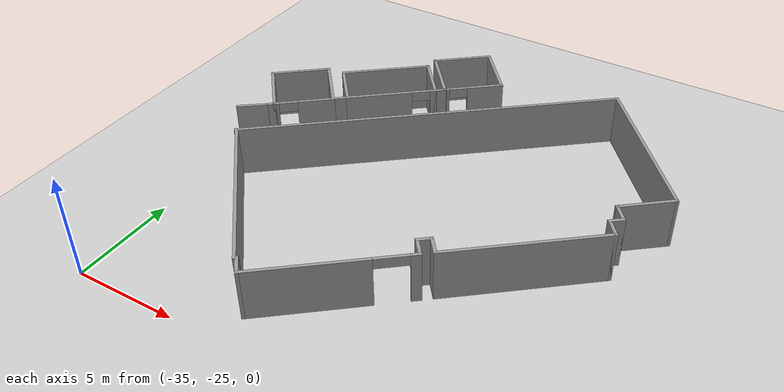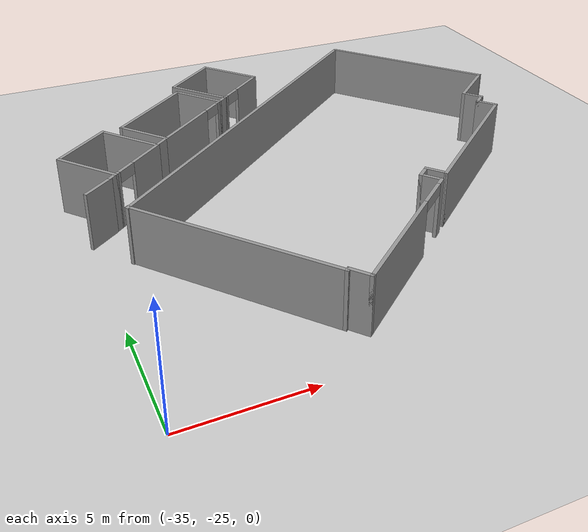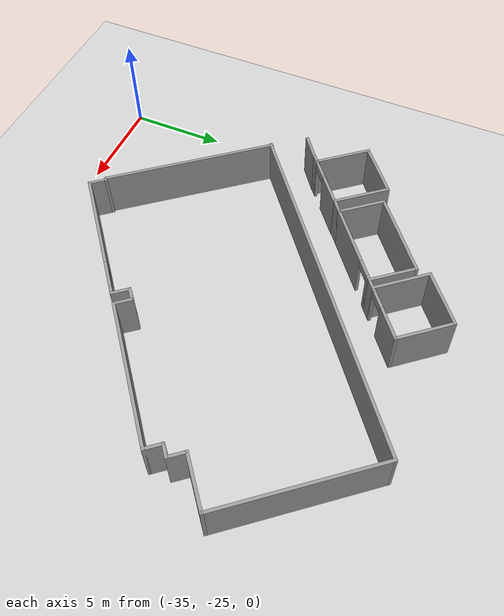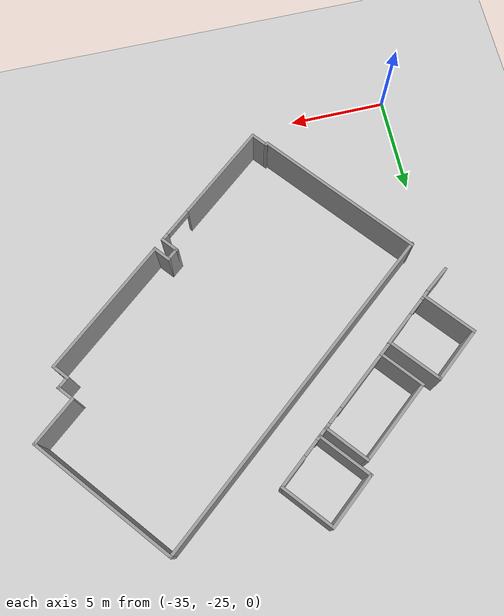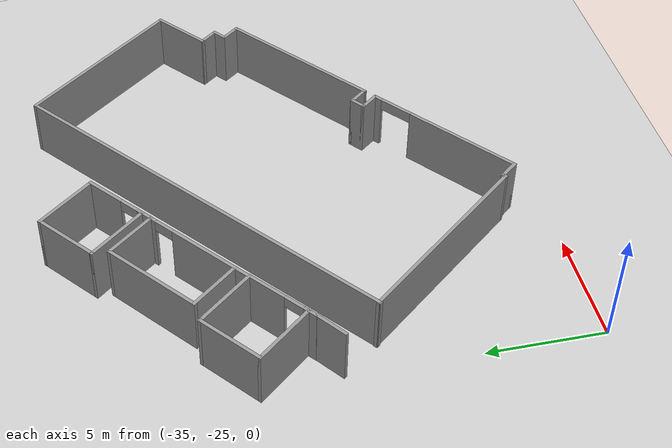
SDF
<sdf version="1.6">
 <world name="default">
  <model name="ground_plane">
   <static>1</static>
   <link name="link">
    <collision name="collision">
     <geometry><plane><normal>0 0 1</normal><size>100 100</size></plane></geometry>
     <surface>
      <contact><collide_bitmask>65535</collide_bitmask></contact>
      <friction><ode><mu>100</mu><mu2>50</mu2></ode></friction>
     </surface>
    </collision>
    <visual name="visual">
     <cast_shadows>0</cast_shadows>
     <geometry><plane><normal>0 0 1</normal><size>100 100</size></plane></geometry>
     <material>
      <script><uri>file://media/materials/scripts/gazebo.material</uri><name>Gazebo/Grey</name></script>
     </material>
    </visual>
   </link>
  </model>
  <model name="1815">
   <pose>-23.5714 -13.996 0 0 -0 0.685675</pose>
   <link name="Wall_66">
    <pose>-5.50546 -4.85 0 0 -0 3.14159</pose>
    <visual name="Wall_66_Visual_0">
     <pose>-3.39963 0 1.25 0 -0 0</pose>
     <geometry><box><size>0.450736 0.15 2.5</size></box></geometry>
     <material>
      <script><uri>file://media/materials/scripts/gazebo.material</uri><name>Gazebo/Grey</name></script>
      <ambient>1 1 1 1</ambient>
     </material>
     <meta><layer>0</layer></meta>
    </visual>
    <collision name="Wall_66_Collision_0">
     <geometry><box><size>0.450736 0.15 2.5</size></box></geometry>
     <pose>-3.39963 0 1.25 0 -0 0</pose>
    </collision>
    <visual name="Wall_66_Visual_1">
     <pose>0.975368 0 1.25 0 -0 0</pose>
     <geometry><box><size>5.29926 0.15 2.5</size></box></geometry>
     <material>
      <script><uri>file://media/materials/scripts/gazebo.material</uri><name>Gazebo/Grey</name></script>
      <ambient>1 1 1 1</ambient>
     </material>
     <meta><layer>0</layer></meta>
    </visual>
    <collision name="Wall_66_Collision_1">
     <geometry><box><size>5.29926 0.15 2.5</size></box></geometry>
     <pose>0.975368 0 1.25 0 -0 0</pose>
    </collision>
    <visual name="Wall_66_Visual_2">
     <pose>-2.42426 0 2.25 0 -0 0</pose>
     <geometry><box><size>1.5 0.15 0.5</size></box></geometry>
     <material>
      <script><uri>file://media/materials/scripts/gazebo.material</uri><name>Gazebo/Grey</name></script>
      <ambient>1 1 1 1</ambient>
     </material>
     <meta><layer>0</layer></meta>
    </visual>
    <collision name="Wall_66_Collision_2">
     <geometry><box><size>1.5 0.15 0.5</size></box></geometry>
     <pose>-2.42426 0 2.25 0 -0 0</pose>
    </collision>
   </link>
   <link name="Wall_67">
    <collision name="Wall_67_Collision">
     <geometry><box><size>1 0.15 2.5</size></box></geometry>
     <pose>0 0 1.25 0 -0 0</pose>
    </collision>
    <visual name="Wall_67_Visual">
     <pose>0 0 1.25 0 -0 0</pose>
     <geometry><box><size>1 0.15 2.5</size></box></geometry>
     <material>
      <script><uri>file://media/materials/scripts/gazebo.material</uri><name>Gazebo/Grey</name></script>
      <ambient>1 1 1 1</ambient>
     </material>
     <meta><layer>0</layer></meta>
    </visual>
    <pose>-9.05546 -4.425 0 0 -0 1.5708</pose>
   </link>
   <link name="Wall_68">
    <collision name="Wall_68_Collision">
     <geometry><box><size>0.25 0.15 2.5</size></box></geometry>
     <pose>0 0 1.25 0 -0 0</pose>
    </collision>
    <visual name="Wall_68_Visual">
     <pose>0 0 1.25 0 -0 0</pose>
     <geometry><box><size>0.25 0.15 2.5</size></box></geometry>
     <material>
      <script><uri>file://media/materials/scripts/gazebo.material</uri><name>Gazebo/Grey</name></script>
      <ambient>1 1 1 1</ambient>
     </material>
     <meta><layer>0</layer></meta>
    </visual>
    <pose>-9.10546 -4 0 0 -0 3.14159</pose>
   </link>
   <link name="Wall_69">
    <collision name="Wall_69_Collision">
     <geometry><box><size>9 0.15 2.5</size></box></geometry>
     <pose>0 0 1.25 0 -0 0</pose>
    </collision>
    <visual name="Wall_69_Visual">
     <pose>0 0 1.25 0 -0 0</pose>
     <geometry><box><size>9 0.15 2.5</size></box></geometry>
     <material>
      <script><uri>file://media/materials/scripts/gazebo.material</uri><name>Gazebo/Grey</name></script>
      <ambient>1 1 1 1</ambient>
     </material>
     <meta><layer>0</layer></meta>
    </visual>
    <pose>-9.15546 0.425 0 0 -0 1.5708</pose>
   </link>
   <link name="Wall_72">
    <collision name="Wall_72_Collision">
     <geometry><box><size>1 0.15 2.5</size></box></geometry>
     <pose>0 0 1.25 0 -0 0</pose>
    </collision>
    <visual name="Wall_72_Visual">
     <pose>0 0 1.25 0 -0 0</pose>
     <geometry><box><size>1 0.15 2.5</size></box></geometry>
     <material>
      <script><uri>file://media/materials/scripts/gazebo.material</uri><name>Gazebo/Grey</name></script>
      <ambient>1 1 1 1</ambient>
     </material>
     <meta><layer>0</layer></meta>
    </visual>
    <pose>-1.95546 -4.425 0 0 -0 1.5708</pose>
   </link>
   <link name="Wall_73">
    <collision name="Wall_73_Collision">
     <geometry><box><size>0.75 0.15 2.5</size></box></geometry>
     <pose>0 0 1.25 0 -0 0</pose>
    </collision>
    <visual name="Wall_73_Visual">
     <pose>0 0 1.25 0 -0 0</pose>
     <geometry><box><size>0.75 0.15 2.5</size></box></geometry>
     <material>
      <script><uri>file://media/materials/scripts/gazebo.material</uri><name>Gazebo/Grey</name></script>
      <ambient>1 1 1 1</ambient>
     </material>
     <meta><layer>0</layer></meta>
    </visual>
    <pose>-1.65546 -4 0 0 -0 0</pose>
   </link>
   <link name="Wall_74">
    <collision name="Wall_74_Collision">
     <geometry><box><size>1 0.15 2.5</size></box></geometry>
     <pose>0 0 1.25 0 -0 0</pose>
    </collision>
    <visual name="Wall_74_Visual">
     <pose>0 0 1.25 0 -0 0</pose>
     <geometry><box><size>1 0.15 2.5</size></box></geometry>
     <material>
      <script><uri>file://media/materials/scripts/gazebo.material</uri><name>Gazebo/Grey</name></script>
      <ambient>1 1 1 1</ambient>
     </material>
     <meta><layer>0</layer></meta>
    </visual>
    <pose>-1.35546 -4.425 0 0 -0 -1.5708</pose>
   </link>
   <link name="Wall_75">
    <collision name="Wall_75_Collision">
     <geometry><box><size>7.5 0.15 2.5</size></box></geometry>
     <pose>0 0 1.25 0 -0 0</pose>
    </collision>
    <visual name="Wall_75_Visual">
     <pose>0 0 1.25 0 -0 0</pose>
     <geometry><box><size>7.5 0.15 2.5</size></box></geometry>
     <material>
      <script><uri>file://media/materials/scripts/gazebo.material</uri><name>Gazebo/Grey</name></script>
      <ambient>1 1 1 1</ambient>
     </material>
     <meta><layer>0</layer></meta>
    </visual>
    <pose>2.31954 -4.85 0 0 -0 0</pose>
   </link>
   <link name="Wall_76">
    <collision name="Wall_76_Collision">
     <geometry><box><size>1 0.15 2.5</size></box></geometry>
     <pose>0 0 1.25 0 -0 0</pose>
    </collision>
    <visual name="Wall_76_Visual">
     <pose>0 0 1.25 0 -0 0</pose>
     <geometry><box><size>1 0.15 2.5</size></box></geometry>
     <material>
      <script><uri>file://media/materials/scripts/gazebo.material</uri><name>Gazebo/Grey</name></script>
      <ambient>1 1 1 1</ambient>
     </material>
     <meta><layer>0</layer></meta>
    </visual>
    <pose>5.99454 -4.425 0 0 -0 1.5708</pose>
   </link>
   <link name="Wall_77">
    <collision name="Wall_77_Collision">
     <geometry><box><size>0.75 0.15 2.5</size></box></geometry>
     <pose>0 0 1.25 0 -0 0</pose>
    </collision>
    <visual name="Wall_77_Visual">
     <pose>0 0 1.25 0 -0 0</pose>
     <geometry><box><size>0.75 0.15 2.5</size></box></geometry>
     <material>
      <script><uri>file://media/materials/scripts/gazebo.material</uri><name>Gazebo/Grey</name></script>
      <ambient>1 1 1 1</ambient>
     </material>
     <meta><layer>0</layer></meta>
    </visual>
    <pose>6.29454 -4 0 0 -0 0</pose>
   </link>
   <link name="Wall_78">
    <collision name="Wall_78_Collision">
     <geometry><box><size>1 0.15 2.5</size></box></geometry>
     <pose>0 0 1.25 0 -0 0</pose>
    </collision>
    <visual name="Wall_78_Visual">
     <pose>0 0 1.25 0 -0 0</pose>
     <geometry><box><size>1 0.15 2.5</size></box></geometry>
     <material>
      <script><uri>file://media/materials/scripts/gazebo.material</uri><name>Gazebo/Grey</name></script>
      <ambient>1 1 1 1</ambient>
     </material>
     <meta><layer>0</layer></meta>
    </visual>
    <pose>6.59454 -3.575 0 0 -0 1.5708</pose>
   </link>
   <link name="Wall_79">
    <collision name="Wall_79_Collision">
     <geometry><box><size>2.75 0.15 2.5</size></box></geometry>
     <pose>0 0 1.25 0 -0 0</pose>
    </collision>
    <visual name="Wall_79_Visual">
     <pose>0 0 1.25 0 -0 0</pose>
     <geometry><box><size>2.75 0.15 2.5</size></box></geometry>
     <material>
      <script><uri>file://media/materials/scripts/gazebo.material</uri><name>Gazebo/Grey</name></script>
      <ambient>1 1 1 1</ambient>
     </material>
     <meta><layer>0</layer></meta>
    </visual>
    <pose>7.89451 -3.14986 0 0 -0 0.000107</pose>
   </link>
   <link name="Wall_80">
    <collision name="Wall_80_Collision">
     <geometry><box><size>8.12003 0.15 2.5</size></box></geometry>
     <pose>0 0 1.25 0 -0 0</pose>
    </collision>
    <visual name="Wall_80_Visual">
     <pose>0 0 1.25 0 -0 0</pose>
     <geometry><box><size>8.12003 0.15 2.5</size></box></geometry>
     <material>
      <script><uri>file://media/materials/scripts/gazebo.material</uri><name>Gazebo/Grey</name></script>
      <ambient>1 1 1 1</ambient>
     </material>
     <meta><layer>0</layer></meta>
    </visual>
    <pose>9.19448 0.835278 0 0 -0 1.5708</pose>
   </link>
   <link name="Wall_81">
    <collision name="Wall_81_Collision">
     <geometry><box><size>18.539 0.15 2.5</size></box></geometry>
     <pose>0 0 1.25 0 -0 0</pose>
    </collision>
    <visual name="Wall_81_Visual">
     <pose>0 0 1.25 0 -0 0</pose>
     <geometry><box><size>18.539 0.15 2.5</size></box></geometry>
     <material>
      <script><uri>file://media/materials/scripts/gazebo.material</uri><name>Gazebo/Grey</name></script>
      <ambient>1 1 1 1</ambient>
     </material>
     <meta><layer>0</layer></meta>
    </visual>
    <pose>-1.8e-05 4.82028 0 0 -0 3.14159</pose>
   </link>
   <static>1</static>
  </model>
  <model name="near_tuna_room_clone_clone_0_clone_clone">
   <pose>-27.0636 -6.16799 0 0 -0 0.69119</pose>
   <link name="Wall_20">
    <collision name="Wall_20_Collision">
     <geometry><box><size>0.5 0.15 2.5</size></box></geometry>
     <pose>0 0 1.25 0 -0 0</pose>
    </collision>
    <visual name="Wall_20_Visual">
     <pose>0 0 1.25 0 -0 0</pose>
     <geometry><box><size>0.5 0.15 2.5</size></box></geometry>
     <material>
      <script><uri>file://media/materials/scripts/gazebo.material</uri><name>Gazebo/Grey</name></script>
      <ambient>1 1 1 1</ambient>
     </material>
     <meta><layer>0</layer></meta>
    </visual>
    <pose>-1.425 -1.425 0 0 -0 0</pose>
   </link>
   <link name="Wall_21">
    <collision name="Wall_21_Collision">
     <geometry><box><size>3 0.15 2.5</size></box></geometry>
     <pose>0 0 1.25 0 -0 0</pose>
    </collision>
    <visual name="Wall_21_Visual">
     <pose>0 0 1.25 0 -0 0</pose>
     <geometry><box><size>3 0.15 2.5</size></box></geometry>
     <material>
      <script><uri>file://media/materials/scripts/gazebo.material</uri><name>Gazebo/Grey</name></script>
      <ambient>1 1 1 1</ambient>
     </material>
     <meta><layer>0</layer></meta>
    </visual>
    <pose>-1.25 -0 0 0 -0 1.5708</pose>
   </link>
   <link name="Wall_22">
    <collision name="Wall_22_Collision">
     <geometry><box><size>3 0.15 2.5</size></box></geometry>
     <pose>0 0 1.25 0 -0 0</pose>
    </collision>
    <visual name="Wall_22_Visual">
     <pose>0 0 1.25 0 -0 0</pose>
     <geometry><box><size>3 0.15 2.5</size></box></geometry>
     <material>
      <script><uri>file://media/materials/scripts/gazebo.material</uri><name>Gazebo/Grey</name></script>
      <ambient>1 1 1 1</ambient>
     </material>
     <meta><layer>0</layer></meta>
    </visual>
    <pose>0.175 1.425 0 0 -0 0</pose>
   </link>
   <link name="Wall_23">
    <collision name="Wall_23_Collision">
     <geometry><box><size>3 0.15 2.5</size></box></geometry>
     <pose>0 0 1.25 0 -0 0</pose>
    </collision>
    <visual name="Wall_23_Visual">
     <pose>0 0 1.25 0 -0 0</pose>
     <geometry><box><size>3 0.15 2.5</size></box></geometry>
     <material>
      <script><uri>file://media/materials/scripts/gazebo.material</uri><name>Gazebo/Grey</name></script>
      <ambient>1 1 1 1</ambient>
     </material>
     <meta><layer>0</layer></meta>
    </visual>
    <pose>1.6 -0 0 0 -0 -1.5708</pose>
   </link>
   <link name="Wall_24">
    <pose>0.175 -1.425 0 0 -0 3.14159</pose>
    <visual name="Wall_24_Visual_0">
     <pose>-0.5975 0 1.25 0 -0 0</pose>
     <geometry><box><size>1.805 0.15 2.5</size></box></geometry>
     <material>
      <script><uri>file://media/materials/scripts/gazebo.material</uri><name>Gazebo/Grey</name></script>
      <ambient>1 1 1 1</ambient>
     </material>
     <meta><layer>0</layer></meta>
    </visual>
    <collision name="Wall_24_Collision_0">
     <geometry><box><size>1.805 0.15 2.5</size></box></geometry>
     <pose>-0.5975 0 1.25 0 -0 0</pose>
    </collision>
    <visual name="Wall_24_Visual_1">
     <pose>1.3525 0 1.25 0 -0 0</pose>
     <geometry><box><size>0.295 0.15 2.5</size></box></geometry>
     <material>
      <script><uri>file://media/materials/scripts/gazebo.material</uri><name>Gazebo/Grey</name></script>
      <ambient>1 1 1 1</ambient>
     </material>
     <meta><layer>0</layer></meta>
    </visual>
    <collision name="Wall_24_Collision_1">
     <geometry><box><size>0.295 0.15 2.5</size></box></geometry>
     <pose>1.3525 0 1.25 0 -0 0</pose>
    </collision>
    <visual name="Wall_24_Visual_2">
     <pose>0.755 0 2.25 0 -0 0</pose>
     <geometry><box><size>0.9 0.15 0.5</size></box></geometry>
     <material>
      <script><uri>file://media/materials/scripts/gazebo.material</uri><name>Gazebo/Grey</name></script>
      <ambient>1 1 1 1</ambient>
     </material>
     <meta><layer>0</layer></meta>
    </visual>
    <collision name="Wall_24_Collision_2">
     <geometry><box><size>0.9 0.15 0.5</size></box></geometry>
     <pose>0.755 0 2.25 0 -0 0</pose>
    </collision>
   </link>
   <static>1</static>
  </model>
  <model name="Left_door_room_0_clone">
   <pose>-30.1445 -9.02511 0 0 0 -2.45407</pose>
   <link name="Wall_29">
    <pose>-0.3 1.175 0 0 -0 0</pose>
    <visual name="Wall_29_Visual_0">
     <pose>-2.0775 0 1.25 0 -0 0</pose>
     <geometry><box><size>0.345 0.15 2.5</size></box></geometry>
     <material>
      <script><uri>file://media/materials/scripts/gazebo.material</uri><name>Gazebo/Grey</name></script>
      <ambient>1 1 1 1</ambient>
     </material>
     <meta><layer>0</layer></meta>
    </visual>
    <collision name="Wall_29_Collision_0">
     <geometry><box><size>0.345 0.15 2.5</size></box></geometry>
     <pose>-2.0775 0 1.25 0 -0 0</pose>
    </collision>
    <visual name="Wall_29_Visual_1">
     <pose>0.6225 0 1.25 0 -0 0</pose>
     <geometry><box><size>3.255 0.15 2.5</size></box></geometry>
     <material>
      <script><uri>file://media/materials/scripts/gazebo.material</uri><name>Gazebo/Grey</name></script>
      <ambient>1 1 1 1</ambient>
     </material>
     <meta><layer>0</layer></meta>
    </visual>
    <collision name="Wall_29_Collision_1">
     <geometry><box><size>3.255 0.15 2.5</size></box></geometry>
     <pose>0.6225 0 1.25 0 -0 0</pose>
    </collision>
    <visual name="Wall_29_Visual_2">
     <pose>-1.455 0 2.25 0 -0 0</pose>
     <geometry><box><size>0.9 0.15 0.5</size></box></geometry>
     <material>
      <script><uri>file://media/materials/scripts/gazebo.material</uri><name>Gazebo/Grey</name></script>
      <ambient>1 1 1 1</ambient>
     </material>
     <meta><layer>0</layer></meta>
    </visual>
    <collision name="Wall_29_Collision_2">
     <geometry><box><size>0.9 0.15 0.5</size></box></geometry>
     <pose>-1.455 0 2.25 0 -0 0</pose>
    </collision>
   </link>
   <link name="Wall_30">
    <collision name="Wall_30_Collision">
     <geometry><box><size>2.5 0.15 2.5</size></box></geometry>
     <pose>0 0 1.25 0 -0 0</pose>
    </collision>
    <visual name="Wall_30_Visual">
     <pose>0 0 1.25 0 -0 0</pose>
     <geometry><box><size>2.5 0.15 2.5</size></box></geometry>
     <material>
      <script><uri>file://media/materials/scripts/gazebo.material</uri><name>Gazebo/Grey</name></script>
      <ambient>1 1 1 1</ambient>
     </material>
     <meta><layer>0</layer></meta>
    </visual>
    <pose>1.875 0 0 0 -0 -1.5708</pose>
   </link>
   <link name="Wall_31">
    <collision name="Wall_31_Collision">
     <geometry><box><size>4.5 0.15 2.5</size></box></geometry>
     <pose>0 0 1.25 0 -0 0</pose>
    </collision>
    <visual name="Wall_31_Visual">
     <pose>0 0 1.25 0 -0 0</pose>
     <geometry><box><size>4.5 0.15 2.5</size></box></geometry>
     <material>
      <script><uri>file://media/materials/scripts/gazebo.material</uri><name>Gazebo/Grey</name></script>
      <ambient>1 1 1 1</ambient>
     </material>
     <meta><layer>0</layer></meta>
    </visual>
    <pose>-0.3 -1.175 0 0 -0 3.14159</pose>
   </link>
   <link name="Wall_32">
    <collision name="Wall_32_Collision">
     <geometry><box><size>2.5 0.15 2.5</size></box></geometry>
     <pose>0 0 1.25 0 -0 0</pose>
    </collision>
    <visual name="Wall_32_Visual">
     <pose>0 0 1.25 0 -0 0</pose>
     <geometry><box><size>2.5 0.15 2.5</size></box></geometry>
     <material>
      <script><uri>file://media/materials/scripts/gazebo.material</uri><name>Gazebo/Grey</name></script>
      <ambient>1 1 1 1</ambient>
     </material>
     <meta><layer>0</layer></meta>
    </visual>
    <pose>-2.475 0 0 0 -0 1.5708</pose>
   </link>
   <link name="Wall_34">
    <collision name="Wall_34_Collision">
     <geometry><box><size>0.75 0.15 2.5</size></box></geometry>
     <pose>0 0 1.25 0 -0 0</pose>
    </collision>
    <visual name="Wall_34_Visual">
     <pose>0 0 1.25 0 -0 0</pose>
     <geometry><box><size>0.75 0.15 2.5</size></box></geometry>
     <material>
      <script><uri>file://media/materials/scripts/gazebo.material</uri><name>Gazebo/Grey</name></script>
      <ambient>1 1 1 1</ambient>
     </material>
     <meta><layer>0</layer></meta>
    </visual>
    <pose>2.175 1.175 0 0 -0 0</pose>
   </link>
   <static>1</static>
  </model>
  <model name="near_tuna_room_clone_clone_0_clone_clone_clone">
   <pose>-33.5216 -11.5079 0 0 -0 0.69119</pose>
   <link name="Wall_20">
    <collision name="Wall_20_Collision">
     <geometry><box><size>0.5 0.15 2.5</size></box></geometry>
     <pose>0 0 1.25 0 -0 0</pose>
    </collision>
    <visual name="Wall_20_Visual">
     <pose>0 0 1.25 0 -0 0</pose>
     <geometry><box><size>0.5 0.15 2.5</size></box></geometry>
     <material>
      <script><uri>file://media/materials/scripts/gazebo.material</uri><name>Gazebo/Grey</name></script>
      <ambient>1 1 1 1</ambient>
     </material>
     <meta><layer>0</layer></meta>
    </visual>
    <pose>-1.425 -1.425 0 0 -0 0</pose>
   </link>
   <link name="Wall_21">
    <collision name="Wall_21_Collision">
     <geometry><box><size>3 0.15 2.5</size></box></geometry>
     <pose>0 0 1.25 0 -0 0</pose>
    </collision>
    <visual name="Wall_21_Visual">
     <pose>0 0 1.25 0 -0 0</pose>
     <geometry><box><size>3 0.15 2.5</size></box></geometry>
     <material>
      <script><uri>file://media/materials/scripts/gazebo.material</uri><name>Gazebo/Grey</name></script>
      <ambient>1 1 1 1</ambient>
     </material>
     <meta><layer>0</layer></meta>
    </visual>
    <pose>-1.25 -0 0 0 -0 1.5708</pose>
   </link>
   <link name="Wall_22">
    <collision name="Wall_22_Collision">
     <geometry><box><size>3 0.15 2.5</size></box></geometry>
     <pose>0 0 1.25 0 -0 0</pose>
    </collision>
    <visual name="Wall_22_Visual">
     <pose>0 0 1.25 0 -0 0</pose>
     <geometry><box><size>3 0.15 2.5</size></box></geometry>
     <material>
      <script><uri>file://media/materials/scripts/gazebo.material</uri><name>Gazebo/Grey</name></script>
      <ambient>1 1 1 1</ambient>
     </material>
     <meta><layer>0</layer></meta>
    </visual>
    <pose>0.175 1.425 0 0 -0 0</pose>
   </link>
   <link name="Wall_23">
    <collision name="Wall_23_Collision">
     <geometry><box><size>3 0.15 2.5</size></box></geometry>
     <pose>0 0 1.25 0 -0 0</pose>
    </collision>
    <visual name="Wall_23_Visual">
     <pose>0 0 1.25 0 -0 0</pose>
     <geometry><box><size>3 0.15 2.5</size></box></geometry>
     <material>
      <script><uri>file://media/materials/scripts/gazebo.material</uri><name>Gazebo/Grey</name></script>
      <ambient>1 1 1 1</ambient>
     </material>
     <meta><layer>0</layer></meta>
    </visual>
    <pose>1.6 -0 0 0 -0 -1.5708</pose>
   </link>
   <link name="Wall_24">
    <pose>0.175 -1.425 0 0 -0 3.14159</pose>
    <visual name="Wall_24_Visual_0">
     <pose>-0.5975 0 1.25 0 -0 0</pose>
     <geometry><box><size>1.805 0.15 2.5</size></box></geometry>
     <material>
      <script><uri>file://media/materials/scripts/gazebo.material</uri><name>Gazebo/Grey</name></script>
      <ambient>1 1 1 1</ambient>
     </material>
     <meta><layer>0</layer></meta>
    </visual>
    <collision name="Wall_24_Collision_0">
     <geometry><box><size>1.805 0.15 2.5</size></box></geometry>
     <pose>-0.5975 0 1.25 0 -0 0</pose>
    </collision>
    <visual name="Wall_24_Visual_1">
     <pose>1.3525 0 1.25 0 -0 0</pose>
     <geometry><box><size>0.295 0.15 2.5</size></box></geometry>
     <material>
      <script><uri>file://media/materials/scripts/gazebo.material</uri><name>Gazebo/Grey</name></script>
      <ambient>1 1 1 1</ambient>
     </material>
     <meta><layer>0</layer></meta>
    </visual>
    <collision name="Wall_24_Collision_1">
     <geometry><box><size>0.295 0.15 2.5</size></box></geometry>
     <pose>1.3525 0 1.25 0 -0 0</pose>
    </collision>
    <visual name="Wall_24_Visual_2">
     <pose>0.755 0 2.25 0 -0 0</pose>
     <geometry><box><size>0.9 0.15 0.5</size></box></geometry>
     <material>
      <script><uri>file://media/materials/scripts/gazebo.material</uri><name>Gazebo/Grey</name></script>
      <ambient>1 1 1 1</ambient>
     </material>
     <meta><layer>0</layer></meta>
    </visual>
    <collision name="Wall_24_Collision_2">
     <geometry><box><size>0.9 0.15 0.5</size></box></geometry>
     <pose>0.755 0 2.25 0 -0 0</pose>
    </collision>
   </link>
   <static>1</static>
  </model>
  <model name="wall(1.5)_1">
   <link name="Wall_0">
    <inertial>
     <mass>1</mass>
     <inertia><ixx>1</ixx><ixy>0</ixy><ixz>0</ixz><iyy>1</iyy><iyz>0</iyz><izz>1</izz></inertia>
    </inertial>
    <visual name="Wall_0_Visual">
     <pose>0 0 1.25 0 -0 0</pose>
     <geometry><box><size>1.5 0.15 2.5</size></box></geometry>
     <material>
      <script><uri>file://media/materials/scripts/gazebo.material</uri><name>Gazebo/Grey</name></script>
      <ambient>1 1 1 1</ambient>
      <shader type="vertex"><normal_map>__default__</normal_map></shader>
      <diffuse>0.7 0.7 0.7 1</diffuse>
      <specular>0.01 0.01 0.01 1</specular>
      <emissive>0 0 0 1</emissive>
     </material>
     <meta><layer>0</layer></meta>
    </visual>
    <collision name="Wall_0_Collision">
     <pose>0 0 1.25 0 -0 0</pose>
     <geometry><box><size>1.5 0.15 2.5</size></box></geometry>
     <surface>
      <friction>
       <ode><mu>1</mu><mu2>1</mu2><fdir1>0 0 0</fdir1><slip1>0</slip1><slip2>0</slip2></ode>
       <torsional>
        <coefficient>1</coefficient>
        <patch_radius>0</patch_radius>
        <surface_radius>0</surface_radius>
        <use_patch_radius>1</use_patch_radius>
        <ode><slip>0</slip></ode>
       </torsional>
      </friction>
      <bounce><restitution_coefficient>0</restitution_coefficient><threshold>1e+06</threshold></bounce>
      <contact>
       <collide_without_contact>0</collide_without_contact>
       <collide_without_contact_bitmask>1</collide_without_contact_bitmask>
       <collide_bitmask>1</collide_bitmask>
       <ode>
        <soft_cfm>0</soft_cfm>
        <soft_erp>0.2</soft_erp>
        <kp>1e+13</kp>
        <kd>1</kd>
        <max_vel>0.01</max_vel>
        <min_depth>0</min_depth>
       </ode>
       <bullet>
        <split_impulse>1</split_impulse>
        <split_impulse_penetration_threshold>-0.01</split_impulse_penetration_threshold>
        <soft_cfm>0</soft_cfm>
        <soft_erp>0.2</soft_erp>
        <kp>1e+13</kp>
        <kd>1</kd>
       </bullet>
      </contact>
     </surface>
    </collision>
   </link>
   <static>1</static>
   <pose>-34.4059 -14.0677 0 0 -0 0.649596</pose>
  </model>
 </world>
</sdf>
